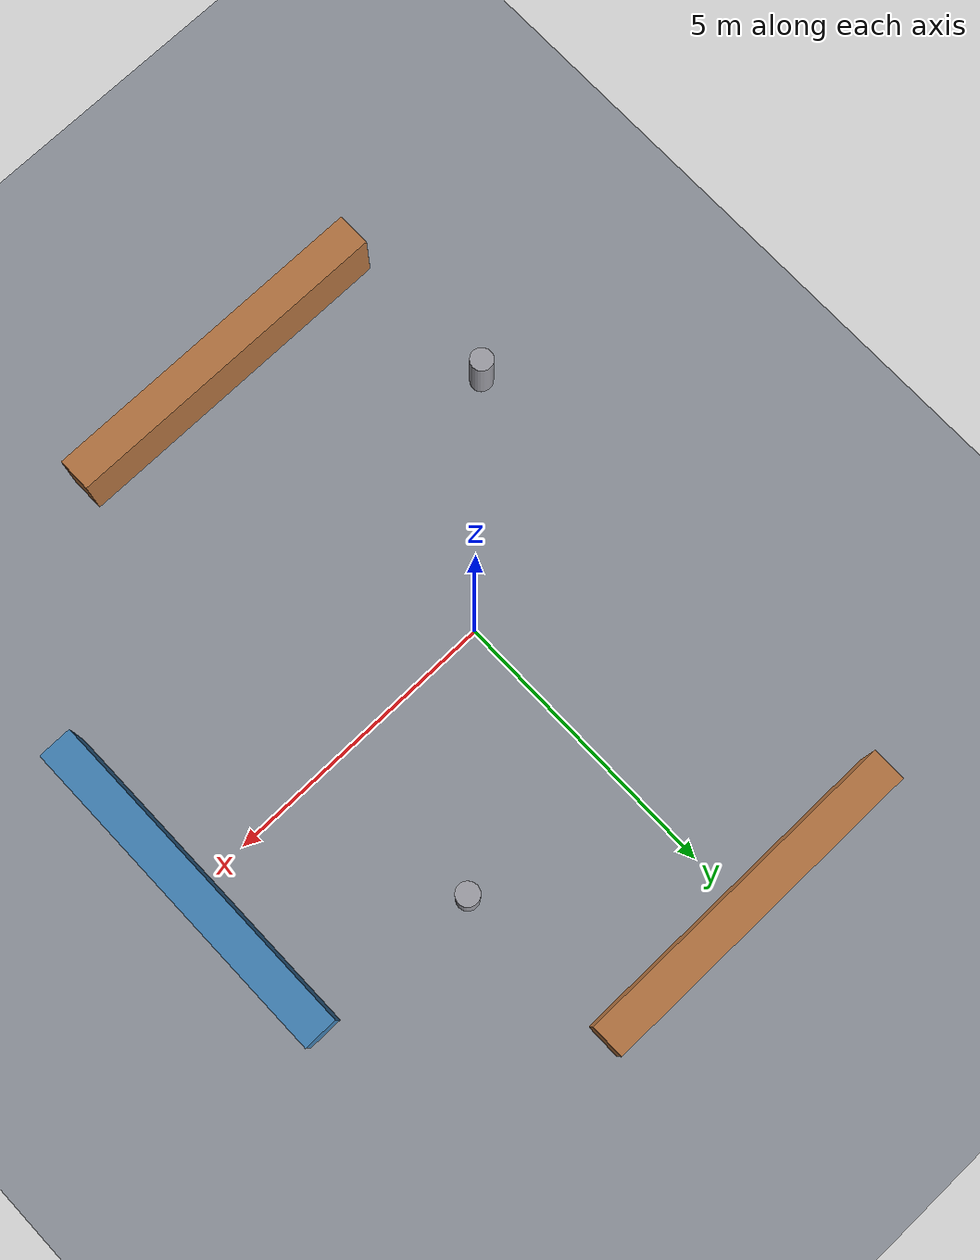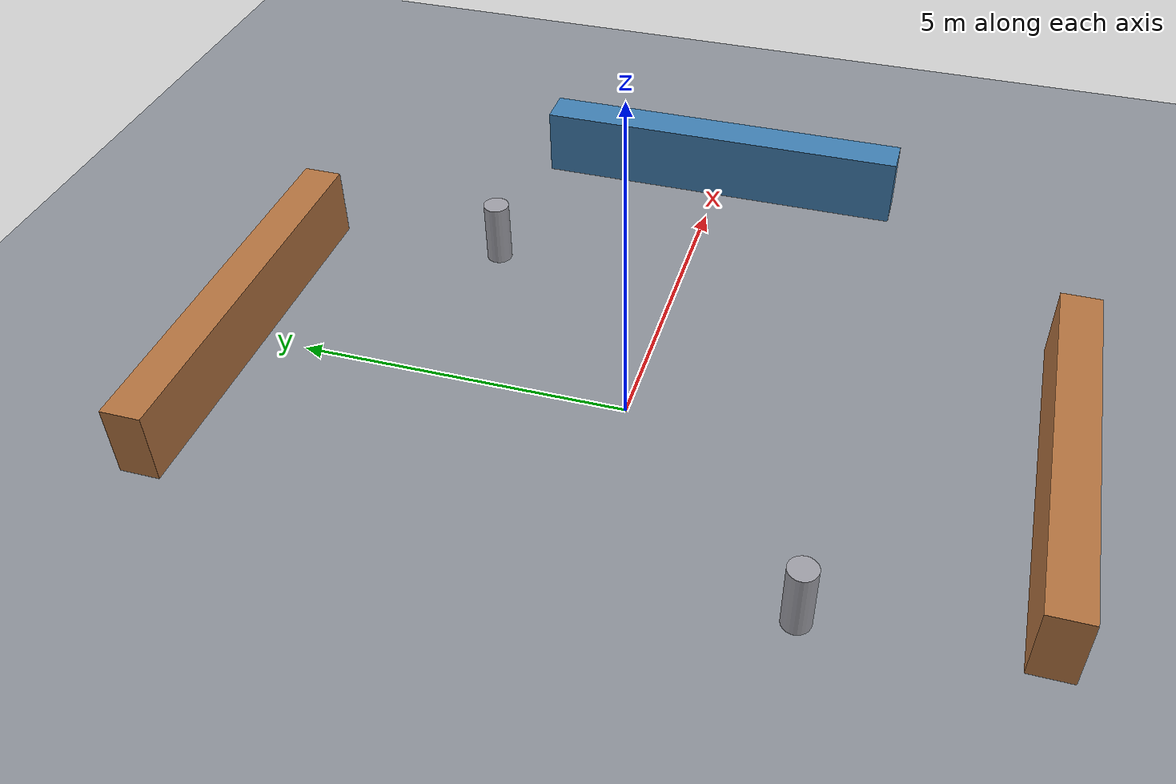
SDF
<?xml version="1.0"?>
<sdf version="1.11">
  <world name="fleet_x_amr_arena">

    <physics name="fleet_x_physics" type="default">
      <max_step_size>0.001</max_step_size>
      <real_time_factor>1.0</real_time_factor>
    </physics>

    <plugin name='gz::sim::systems::Physics' filename='gz-sim-physics-system'/>
    <plugin name='gz::sim::systems::UserCommands' filename='gz-sim-user-commands-system'/>
    <plugin name='gz::sim::systems::SceneBroadcaster' filename='gz-sim-scene-broadcaster-system'/>
    <plugin name='gz::sim::systems::Contact' filename='gz-sim-contact-system'/>
    <plugin name='gz::sim::systems::Sensors' filename='gz-sim-sensors-system'>
      <render_engine>ogre2</render_engine>
    </plugin>
    <plugin name='gz::sim::systems::Imu' filename='gz-sim-imu-system'/>

    <gravity>0 0 -9.8</gravity>

    <scene>
      <ambient>0.55 0.55 0.55 1</ambient>
      <background>0.62 0.66 0.72 1</background>
      <shadows>true</shadows>
    </scene>

    <light type="directional" name="sun">
      <cast_shadows>true</cast_shadows>
      <pose>0 0 12 0 0 0</pose>
      <diffuse>0.9 0.9 0.9 1</diffuse>
      <specular>0.3 0.3 0.3 1</specular>
      <direction>-0.4 0.3 -1</direction>
    </light>

    <model name="floor">
      <static>true</static>
      <pose>0 0 -0.05 0 0 0</pose>
      <link name="link">
        <collision name="collision">
          <geometry>
            <box>
              <size>40 40 0.1</size>
            </box>
          </geometry>
          <surface>
            <friction>
              <ode>
                <mu>1.0</mu>
                <mu2>1.0</mu2>
              </ode>
            </friction>
            <contact>
              <ode>
                <kp>1e6</kp>
                <kd>1e3</kd>
              </ode>
            </contact>
          </surface>
        </collision>
        <visual name="visual">
          <geometry>
            <box>
              <size>40 40 0.1</size>
            </box>
          </geometry>
          <material>
            <ambient>0.42 0.44 0.46 1</ambient>
            <diffuse>0.55 0.57 0.60 1</diffuse>
          </material>
        </visual>
      </link>
    </model>

    <!--
      Static storage racks. Purely visual + collision reference geometry; placed
      far enough from the spawn point that the AMR cannot touch them during the
      Phase 2A manoeuvre tests.
    -->
    <model name="rack_north">
      <static>true</static>
      <pose>0 6 0 0 0 0</pose>
      <link name="link">
        <collision name="collision">
          <geometry><box><size>6.0 0.6 2.2</size></box></geometry>
        </collision>
        <visual name="visual">
          <geometry><box><size>6.0 0.6 2.2</size></box></geometry>
          <material>
            <ambient>0.55 0.35 0.20 1</ambient>
            <diffuse>0.70 0.45 0.25 1</diffuse>
          </material>
        </visual>
      </link>
    </model>

    <model name="rack_south">
      <static>true</static>
      <pose>0 -6 0 0 0 0</pose>
      <link name="link">
        <collision name="collision">
          <geometry><box><size>6.0 0.6 2.2</size></box></geometry>
        </collision>
        <visual name="visual">
          <geometry><box><size>6.0 0.6 2.2</size></box></geometry>
          <material>
            <ambient>0.55 0.35 0.20 1</ambient>
            <diffuse>0.70 0.45 0.25 1</diffuse>
          </material>
        </visual>
      </link>
    </model>

    <model name="rack_east">
      <static>true</static>
      <pose>6 0 0 0 0 0</pose>
      <link name="link">
        <collision name="collision">
          <geometry><box><size>0.6 6.0 2.2</size></box></geometry>
        </collision>
        <visual name="visual">
          <geometry><box><size>0.6 6.0 2.2</size></box></geometry>
          <material>
            <ambient>0.20 0.40 0.55 1</ambient>
            <diffuse>0.25 0.50 0.70 1</diffuse>
          </material>
        </visual>
      </link>
    </model>

    <model name="pillar_a">
      <static>true</static>
      <pose>3.0 3.0 0 0 0 0</pose>
      <link name="link">
        <collision name="collision">
          <geometry><cylinder><radius>0.2</radius><length>2.0</length></cylinder></geometry>
        </collision>
        <visual name="visual">
          <geometry><cylinder><radius>0.2</radius><length>2.0</length></cylinder></geometry>
          <material>
            <ambient>0.50 0.50 0.52 1</ambient>
            <diffuse>0.62 0.62 0.65 1</diffuse>
          </material>
        </visual>
      </link>
    </model>

    <model name="pillar_b">
      <static>true</static>
      <pose>-3.0 -3.0 0 0 0 0</pose>
      <link name="link">
        <collision name="collision">
          <geometry><cylinder><radius>0.2</radius><length>2.0</length></cylinder></geometry>
        </collision>
        <visual name="visual">
          <geometry><cylinder><radius>0.2</radius><length>2.0</length></cylinder></geometry>
          <material>
            <ambient>0.50 0.50 0.52 1</ambient>
            <diffuse>0.62 0.62 0.65 1</diffuse>
          </material>
        </visual>
      </link>
    </model>

  </world>
</sdf>
